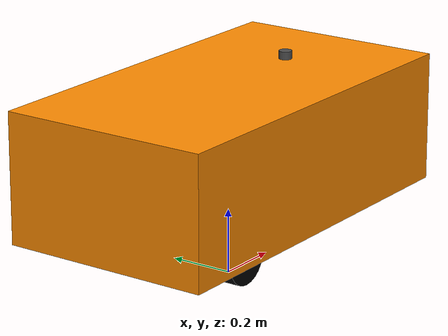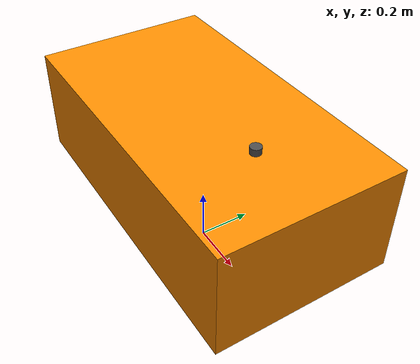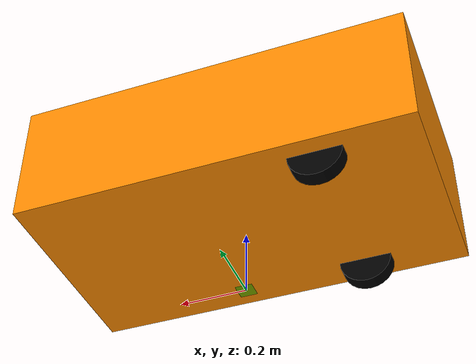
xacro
<?xml version="1.0"?>

<robot name="box_robot" xmlns:xacro="http://ros.org/wiki/xacro">

   <!-- Define a number of dimensions using properties -->
   <xacro:property name="torso_offset_x" value="0.0" />
   <xacro:property name="torso_offset_y" value="0.0" />
   <xacro:property name="torso_offset_z" value="0.23" /> <!--base_height/2+torso_height/2 -->

   <!-- Define a number of dimensions of sick sensor using properties -->
   <xacro:property name="sick_radius" value="0.02" />
   <xacro:property name="sick_length" value="0.05" />
   <xacro:property name="sick_offset_x" value="0.30" />
   <xacro:property name="sick_offset_y" value="0.0" />
   <xacro:property name="sick_offset_z" value="0.3" />

   <!-- Include all component files -->
   <xacro:include filename="$(find gpsbot_description)/urdf/gpsbotbase/materials.urdf.xacro" />
   <xacro:include filename="$(find gpsbot_description)/urdf/gpsbotbase/base.urdf.xacro" />
   <!-- Add the base and wheels -->
   <base name="base" color="DeepSkyBlue"/>

   <!-- Attach the torso -->

<!--This is for sensor-->
  <link name="front_flag">
      <visual>
        <origin xyz="0 0 0" rpy="0 0 0" />
        <geometry>
	  <cylinder radius="${sick_radius}" length="${sick_length}" />
        </geometry>
        <material name="DarkGrey" />
      </visual>
  </link>

  <joint name="front_point_flag" type="fixed">
    <origin xyz="${sick_offset_x} ${sick_offset_y} ${base_length/2}" rpy="0 0 0" />
    <parent link="base_link"/>
    <child link="front_flag" />
  </joint>

</robot>

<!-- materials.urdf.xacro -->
<robot>

  <!-- Put all the color definitions in a separate file -->

  <material name="LightBlack">
    <color rgba="0.2 0.2 0.2 1.0"/>
  </material>

  <material name="Black">
    <color rgba="0 0 0 1.0"/>
  </material>

   <material name="TransparentBlack">
    <color rgba="0.2 0.2 0.2 0.8"/>
  </material>

  <material name="Orange">
    <color rgba="1.0  0.55 0.0 1.0"/>
  </material>

  <material name="Grey">
    <color rgba="0.7 0.7 0.7 1.0"/>
  </material>

  <material name="DarkGrey">
    <color rgba="0.3 0.3 0.3 1.0"/>
  </material>

  <material name="Red">
    <color rgba="0.8 0.0 0.0 1.0"/>
  </material>

  <material name="White">
    <color rgba="1.0 1.0 1.0 1.0"/>
  </material>

  <material name="OffWhite">
    <color rgba="0.8 0.8 0.8 1.0"/>
  </material>

  <material name="Blue">
    <color rgba="0.0 0.0 0.8 1.0"/>
  </material>

  <material name="Green">
    <color rgba="0.0 0.8 0.0 1.0"/>
  </material>

  <material name="TransparentGreen">
    <color rgba="0.0 0.8 0.0 0.5"/>
  </material>

  <material name="DogerBlue">
    <color rgba="0.117 0.564 1.0 1.0"/>
  </material>

  <material name="DeepSkyBlue">
    <color rgba="0.0 0.749 1.0 1.0"/>
  </material>

</robot>

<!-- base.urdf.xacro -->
<robot name="base" xmlns:xacro="http://ros.org/wiki/xacro">

  <!-- Define a number of dimensions using properties -->
  <!-- this is for sweeper. The first model. -->

  <xacro:property name="base_x" value="1.20" />
  <xacro:property name="base_y" value="0.66" />
  <xacro:property name="base_length" value="0.4" />
  <xacro:property name="wheel_length" value="0.046" />
  <xacro:property name="wheel_radius" value="0.08" />
  <xacro:property name="wheel_offset_x" value="-0.30" />
  <xacro:property name="wheel_offset_y" value="0.255" />
  <xacro:property name="wheel_offset_z" value="-${base_length/2}" />

  <xacro:property name="PI" value="3.1415926" />

  <!-- define a wheel -->
  <xacro:macro name="wheel" params="suffix parent reflect color">
    <joint name="${parent}_${suffix}_wheel_joint" type="continuous">
      <axis xyz="0 0 1" />
      <limit effort="100" velocity="100"/>
      <safety_controller k_velocity="10" />
      <origin xyz="${wheel_offset_x} ${reflect*wheel_offset_y} ${wheel_offset_z}" rpy="${reflect*PI/2} 0 0" />
      <parent link="${parent}_link"/>
      <child link="${parent}_${suffix}_wheel_link"/>
    </joint>
    <link name="${parent}_${suffix}_wheel_link">
      <visual>
        <origin xyz="0 0 0" rpy="0 0 0" />
        <geometry>
          <cylinder radius="${wheel_radius}" length="${wheel_length}"/>
        </geometry>
        <material name="${color}" />
      </visual>
    </link>
  </xacro:macro>

  <!-- The base xacro macro -->
  <xacro:macro name="base" params="name color">
    <link name="${name}_link">

        <visual>
            <origin xyz="0 0 0" rpy="0 0 0"/>
            <geometry>
		<box size="${base_x} ${base_y} ${base_length}"/>
            </geometry>
            <material name="Orange"/>
        </visual>
        <collision>
            <origin xyz="0 0 0" rpy="0 0 0"/>
            <geometry>
                 <box size="${base_x} ${base_y} ${base_length}"/>
            </geometry>
        </collision>
    </link>
  </xacro:macro>

  <link name="base_footprint">
      <visual>
        <origin xyz="0 0 0" rpy="0 0 0" />
        <geometry>

          <box size="0.05 0.05 0.001" />
        </geometry>
        <material name="TransparentGreen" />
      </visual>
  </link>

  <joint name="base_joint" type="fixed">
    <origin xyz="0 0 ${base_length/2 - wheel_offset_z}" rpy="0 0 0" />
    <parent link="base_footprint"/>
    <child link="base_link" />
  </joint>

   <!-- Add the drive wheels -->
   <wheel parent="base" suffix="l" reflect="1" color="Black"/>
   <wheel parent="base" suffix="r" reflect="-1" color="Black"/>

</robot>
